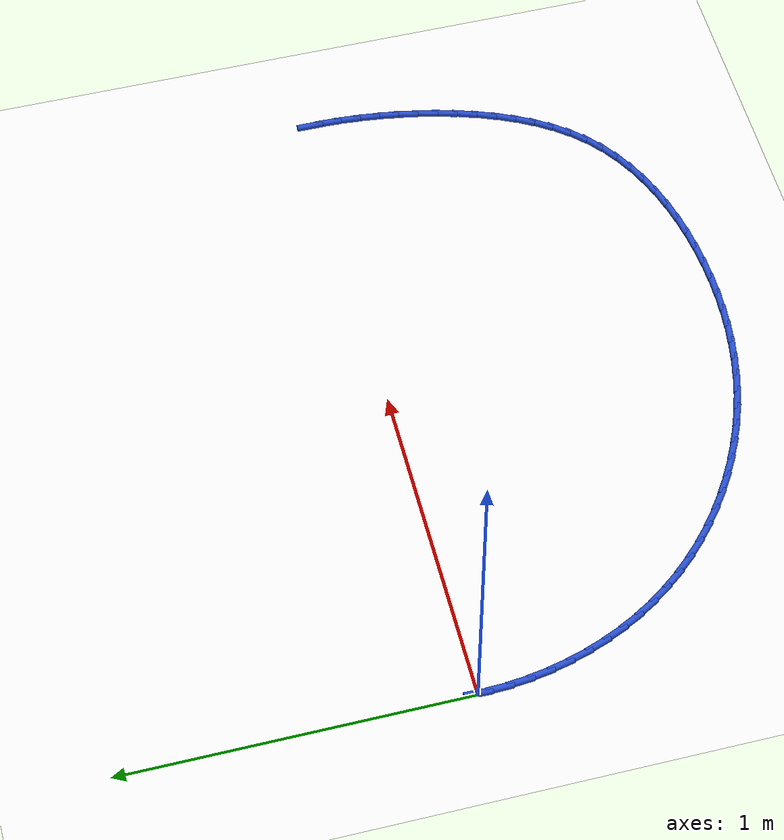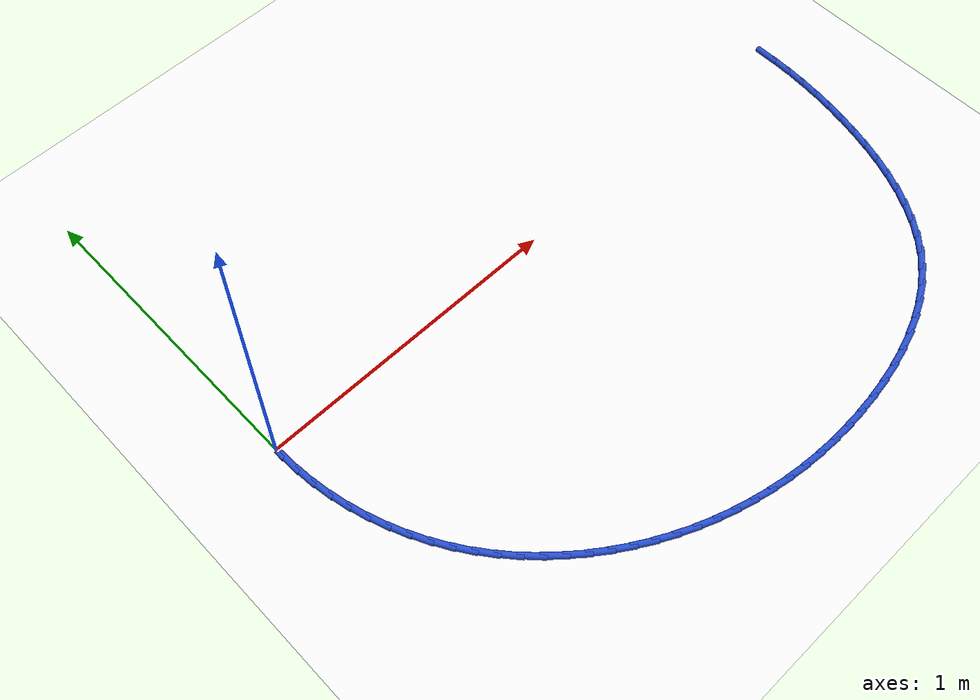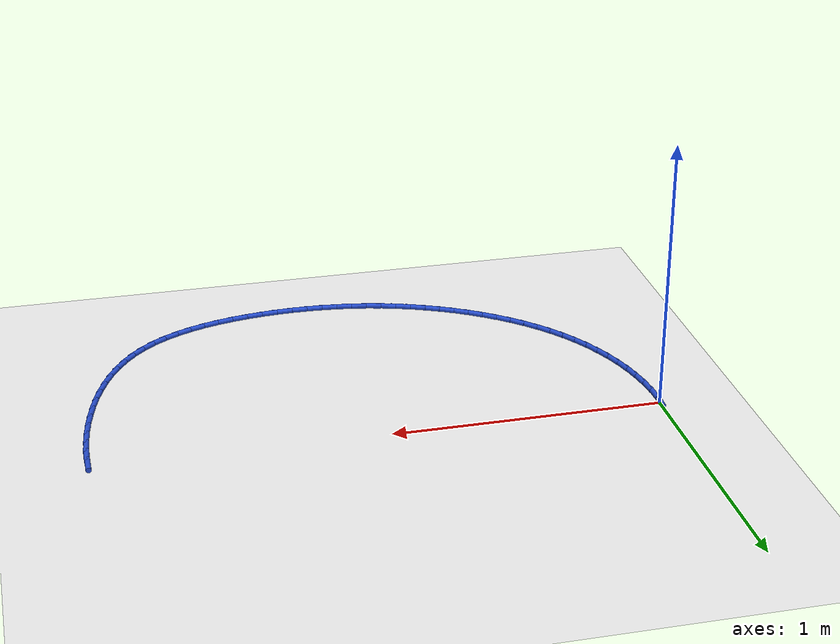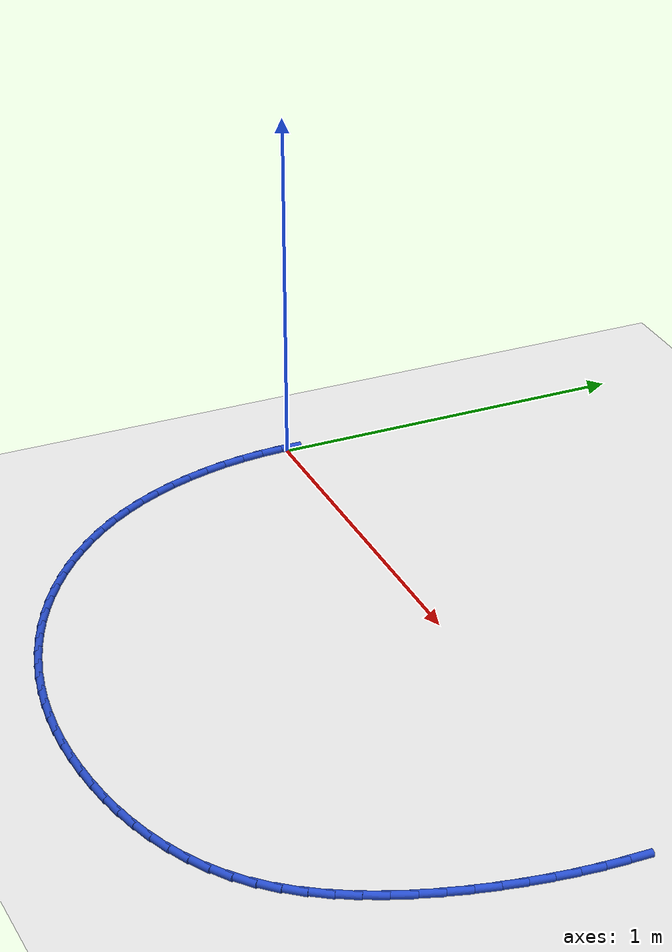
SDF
<sdf version="1.6">
 <world name="default">
  <model name="ground_plane">
   <static>1</static>
   <link name="link">
    <collision name="collision">
     <geometry><plane><normal>0 0 1</normal><size>100 100</size></plane></geometry>
     <surface><friction><ode><mu>100</mu><mu2>50</mu2></ode></friction></surface>
    </collision>
    <visual name="visual">
     <cast_shadows>0</cast_shadows>
     <geometry><plane><normal>0 0 1</normal><size>100 100</size></plane></geometry>
     <material>
      <script><uri>file://media/materials/scripts/gazebo.material</uri><name>Gazebo/WhiteGlow</name></script>
     </material>
    </visual>
   </link>
  </model>
  <model name="line">
   <link name="link_0">
    <pose>-6.938893903907228e-17 -4.163336342344337e-17 0.01 0 1.57 1.5328602613561564</pose>
    <collision name="collision">
     <geometry><cylinder><radius>0.01</radius><length>0.08</length></cylinder></geometry>
    </collision>
    <visual name="visual">
     <material>
      <script><name>Gazebo/Blue</name><uri>file://media/materials/scripts/gazebo.material</uri></script>
     </material>
     <geometry><cylinder><radius>0.01</radius><length>0.08</length></cylinder></geometry>
    </visual>
   </link>
   <link name="link_55">
    <pose>2.065390239784261 -0.01751924035546646 0.01 0 1.57 1.5667235144095604</pose>
    <collision name="collision">
     <geometry><cylinder><radius>0.01</radius><length>0.08</length></cylinder></geometry>
    </collision>
    <visual name="visual">
     <material>
      <script><name>Gazebo/Blue</name><uri>file://media/materials/scripts/gazebo.material</uri></script>
     </material>
     <geometry><cylinder><radius>0.01</radius><length>0.08</length></cylinder></geometry>
    </visual>
   </link>
   <link name="link_56">
    <pose>2.065147559204269 -0.07710441521364236 0.01 0 1.57 1.5249233463919325</pose>
    <collision name="collision">
     <geometry><cylinder><radius>0.01</radius><length>0.08</length></cylinder></geometry>
    </collision>
    <visual name="visual">
     <material>
      <script><name>Gazebo/Blue</name><uri>file://media/materials/scripts/gazebo.material</uri></script>
     </material>
     <geometry><cylinder><radius>0.01</radius><length>0.08</length></cylinder></geometry>
    </visual>
   </link>
   <link name="link_57">
    <pose>2.062403487495654 -0.13688136023302033 0.01 0 1.57 1.484120640709512</pose>
    <collision name="collision">
     <geometry><cylinder><radius>0.01</radius><length>0.08</length></cylinder></geometry>
    </collision>
    <visual name="visual">
     <material>
      <script><name>Gazebo/Blue</name><uri>file://media/materials/scripts/gazebo.material</uri></script>
     </material>
     <geometry><cylinder><radius>0.01</radius><length>0.08</length></cylinder></geometry>
    </visual>
   </link>
   <link name="link_58">
    <pose>2.0571951814565312 -0.19682039235672028 0.01 0 1.57 1.4443691964197785</pose>
    <collision name="collision">
     <geometry><cylinder><radius>0.01</radius><length>0.08</length></cylinder></geometry>
    </collision>
    <visual name="visual">
     <material>
      <script><name>Gazebo/Blue</name><uri>file://media/materials/scripts/gazebo.material</uri></script>
     </material>
     <geometry><cylinder><radius>0.01</radius><length>0.08</length></cylinder></geometry>
    </visual>
   </link>
   <link name="link_59">
    <pose>2.049559797885017 -0.25689182852786496 0.01 0 1.57 1.4057078302411725</pose>
    <collision name="collision">
     <geometry><cylinder><radius>0.01</radius><length>0.08</length></cylinder></geometry>
    </collision>
    <visual name="visual">
     <material>
      <script><name>Gazebo/Blue</name><uri>file://media/materials/scripts/gazebo.material</uri></script>
     </material>
     <geometry><cylinder><radius>0.01</radius><length>0.08</length></cylinder></geometry>
    </visual>
   </link>
   <link name="link_60">
    <pose>2.039534493579226 -0.3170659856895741 0.01 0 1.57 1.3679060801187792</pose>
    <collision name="collision">
     <geometry><cylinder><radius>0.01</radius><length>0.08</length></cylinder></geometry>
    </collision>
    <visual name="visual">
     <material>
      <script><name>Gazebo/Blue</name><uri>file://media/materials/scripts/gazebo.material</uri></script>
     </material>
     <geometry><cylinder><radius>0.01</radius><length>0.08</length></cylinder></geometry>
    </visual>
   </link>
   <link name="link_61">
    <pose>2.0271450735687075 -0.3772904203829154 0.01 0 1.57 1.3278888230209127</pose>
    <collision name="collision">
     <geometry><cylinder><radius>0.01</radius><length>0.08</length></cylinder></geometry>
    </collision>
    <visual name="visual">
     <material>
      <script><name>Gazebo/Blue</name><uri>file://media/materials/scripts/gazebo.material</uri></script>
     </material>
     <geometry><cylinder><radius>0.01</radius><length>0.08</length></cylinder></geometry>
    </visual>
   </link>
   <link name="link_62">
    <pose>2.0122868152004787 -0.43725097992573175 0.01 0 1.57 1.2832042748288657</pose>
    <collision name="collision">
     <geometry><cylinder><radius>0.01</radius><length>0.08</length></cylinder></geometry>
    </collision>
    <visual name="visual">
     <material>
      <script><name>Gazebo/Blue</name><uri>file://media/materials/scripts/gazebo.material</uri></script>
     </material>
     <geometry><cylinder><radius>0.01</radius><length>0.08</length></cylinder></geometry>
    </visual>
   </link>
   <link name="link_63">
    <pose>1.9947714615980734 -0.49646602473718526 0.01 0 1.57 1.2330884852553163</pose>
    <collision name="collision">
     <geometry><cylinder><radius>0.01</radius><length>0.08</length></cylinder></geometry>
    </collision>
    <visual name="visual">
     <material>
      <script><name>Gazebo/Blue</name><uri>file://media/materials/scripts/gazebo.material</uri></script>
     </material>
     <geometry><cylinder><radius>0.01</radius><length>0.08</length></cylinder></geometry>
    </visual>
   </link>
   <link name="link_64">
    <pose>1.9744093937584597 -0.5544511841599359 0.01 0 1.57 1.1767293585696</pose>
    <collision name="collision">
     <geometry><cylinder><radius>0.01</radius><length>0.08</length></cylinder></geometry>
    </collision>
    <visual name="visual">
     <material>
      <script><name>Gazebo/Blue</name><uri>file://media/materials/scripts/gazebo.material</uri></script>
     </material>
     <geometry><cylinder><radius>0.01</radius><length>0.08</length></cylinder></geometry>
    </visual>
   </link>
   <link name="link_65">
    <pose>1.9510109926786046 -0.6107220875366461 0.01 0 1.57 1.1132596212348667</pose>
    <collision name="collision">
     <geometry><cylinder><radius>0.01</radius><length>0.08</length></cylinder></geometry>
    </collision>
    <visual name="visual">
     <material>
      <script><name>Gazebo/Blue</name><uri>file://media/materials/scripts/gazebo.material</uri></script>
     </material>
     <geometry><cylinder><radius>0.01</radius><length>0.08</length></cylinder></geometry>
    </visual>
   </link>
   <link name="link_66">
    <pose>1.9243866393554725 -0.6647943642099777 0.01 0 1.57 1.04180992639475</pose>
    <collision name="collision">
     <geometry><cylinder><radius>0.01</radius><length>0.08</length></cylinder></geometry>
    </collision>
    <visual name="visual">
     <material>
      <script><name>Gazebo/Blue</name><uri>file://media/materials/scripts/gazebo.material</uri></script>
     </material>
     <geometry><cylinder><radius>0.01</radius><length>0.08</length></cylinder></geometry>
    </visual>
   </link>
   <link name="link_67">
    <pose>1.894346714786032 -0.7161836435225909 0.01 0 1.57 0.961606068669883</pose>
    <collision name="collision">
     <geometry><cylinder><radius>0.01</radius><length>0.08</length></cylinder></geometry>
    </collision>
    <visual name="visual">
     <material>
      <script><name>Gazebo/Blue</name><uri>file://media/materials/scripts/gazebo.material</uri></script>
     </material>
     <geometry><cylinder><radius>0.01</radius><length>0.08</length></cylinder></geometry>
    </visual>
   </link>
   <link name="link_68">
    <pose>1.8607015999672487 -0.7644055548171486 0.01 0 1.57 0.8721236228993514</pose>
    <collision name="collision">
     <geometry><cylinder><radius>0.01</radius><length>0.08</length></cylinder></geometry>
    </collision>
    <visual name="visual">
     <material>
      <script><name>Gazebo/Blue</name><uri>file://media/materials/scripts/gazebo.material</uri></script>
     </material>
     <geometry><cylinder><radius>0.01</radius><length>0.08</length></cylinder></geometry>
    </visual>
   </link>
   <link name="link_69">
    <pose>1.823261675896089 -0.8089757274363104 0.01 0 1.57 0.7733031125037239</pose>
    <collision name="collision">
     <geometry><cylinder><radius>0.01</radius><length>0.08</length></cylinder></geometry>
    </collision>
    <visual name="visual">
     <material>
      <script><name>Gazebo/Blue</name><uri>file://media/materials/scripts/gazebo.material</uri></script>
     </material>
     <geometry><cylinder><radius>0.01</radius><length>0.08</length></cylinder></geometry>
    </visual>
   </link>
   <link name="link_70">
    <pose>1.7818374013920415 -0.8494098719140968 0.01 0 1.57 0.6693312123889272</pose>
    <collision name="collision">
     <geometry><cylinder><radius>0.01</radius><length>0.08</length></cylinder></geometry>
    </collision>
    <visual name="visual">
     <material>
      <script><name>Gazebo/Blue</name><uri>file://media/materials/scripts/gazebo.material</uri></script>
     </material>
     <geometry><cylinder><radius>0.01</radius><length>0.08</length></cylinder></geometry>
    </visual>
   </link>
   <link name="link_71">
    <pose>1.7363820026910004 -0.8853726464160072 0.01 0 1.57 0.5720897312770478</pose>
    <collision name="collision">
     <geometry><cylinder><radius>0.01</radius><length>0.08</length></cylinder></geometry>
    </collision>
    <visual name="visual">
     <material>
      <script><name>Gazebo/Blue</name><uri>file://media/materials/scripts/gazebo.material</uri></script>
     </material>
     <geometry><cylinder><radius>0.01</radius><length>0.08</length></cylinder></geometry>
    </visual>
   </link>
   <link name="link_72">
    <pose>1.6872869780688275 -0.9169859533719695 0.01 0 1.57 0.484002492415613</pose>
    <collision name="collision">
     <geometry><cylinder><radius>0.01</radius><length>0.08</length></cylinder></geometry>
    </collision>
    <visual name="visual">
     <material>
      <script><name>Gazebo/Blue</name><uri>file://media/materials/scripts/gazebo.material</uri></script>
     </material>
     <geometry><cylinder><radius>0.01</radius><length>0.08</length></cylinder></geometry>
    </visual>
   </link>
   <link name="link_73">
    <pose>1.6350276463160438 -0.9444591442072189 0.01 0 1.57 0.4047864031667848</pose>
    <collision name="collision">
     <geometry><cylinder><radius>0.01</radius><length>0.08</length></cylinder></geometry>
    </collision>
    <visual name="visual">
     <material>
      <script><name>Gazebo/Blue</name><uri>file://media/materials/scripts/gazebo.material</uri></script>
     </material>
     <geometry><cylinder><radius>0.01</radius><length>0.08</length></cylinder></geometry>
    </visual>
   </link>
   <link name="link_74">
    <pose>1.5800793262231645 -0.9680015703469913 0.01 0 1.57 0.3337780192959363</pose>
    <collision name="collision">
     <geometry><cylinder><radius>0.01</radius><length>0.08</length></cylinder></geometry>
    </collision>
    <visual name="visual">
     <material>
      <script><name>Gazebo/Blue</name><uri>file://media/materials/scripts/gazebo.material</uri></script>
     </material>
     <geometry><cylinder><radius>0.01</radius><length>0.08</length></cylinder></geometry>
    </visual>
   </link>
   <link name="link_75">
    <pose>1.5229173365807096 -0.9878225832165215 0.01 0 1.57 0.27012304247640156</pose>
    <collision name="collision">
     <geometry><cylinder><radius>0.01</radius><length>0.08</length></cylinder></geometry>
    </collision>
    <visual name="visual">
     <material>
      <script><name>Gazebo/Blue</name><uri>file://media/materials/scripts/gazebo.material</uri></script>
     </material>
     <geometry><cylinder><radius>0.01</radius><length>0.08</length></cylinder></geometry>
    </visual>
   </link>
   <link name="link_76">
    <pose>1.4640169961791965 -1.004131534241046 0.01 0 1.57 0.2129057000117949</pose>
    <collision name="collision">
     <geometry><cylinder><radius>0.01</radius><length>0.08</length></cylinder></geometry>
    </collision>
    <visual name="visual">
     <material>
      <script><name>Gazebo/Blue</name><uri>file://media/materials/scripts/gazebo.material</uri></script>
     </material>
     <geometry><cylinder><radius>0.01</radius><length>0.08</length></cylinder></geometry>
    </visual>
   </link>
   <link name="link_77">
    <pose>1.4038536238091432 -1.0171377748457997 0.01 0 1.57 0.16122505594077166</pose>
    <collision name="collision">
     <geometry><cylinder><radius>0.01</radius><length>0.08</length></cylinder></geometry>
    </collision>
    <visual name="visual">
     <material>
      <script><name>Gazebo/Blue</name><uri>file://media/materials/scripts/gazebo.material</uri></script>
     </material>
     <geometry><cylinder><radius>0.01</radius><length>0.08</length></cylinder></geometry>
    </visual>
   </link>
   <link name="link_78">
    <pose>1.3429025382610684 -1.0270506564560185 0.01 0 1.57 0.11423239530566848</pose>
    <collision name="collision">
     <geometry><cylinder><radius>0.01</radius><length>0.08</length></cylinder></geometry>
    </collision>
    <visual name="visual">
     <material>
      <script><name>Gazebo/Blue</name><uri>file://media/materials/scripts/gazebo.material</uri></script>
     </material>
     <geometry><cylinder><radius>0.01</radius><length>0.08</length></cylinder></geometry>
    </visual>
   </link>
   <link name="link_79">
    <pose>1.2816390583254904 -1.034079530496938 0.01 0 1.57 0.07058225369698827</pose>
    <collision name="collision">
     <geometry><cylinder><radius>0.01</radius><length>0.08</length></cylinder></geometry>
    </collision>
    <visual name="visual">
     <material>
      <script><name>Gazebo/Blue</name><uri>file://media/materials/scripts/gazebo.material</uri></script>
     </material>
     <geometry><cylinder><radius>0.01</radius><length>0.08</length></cylinder></geometry>
    </visual>
   </link>
   <link name="link_80">
    <pose>1.2204823502569624 -1.038403291282684 0.01 0 1.57 0.027170258291969514</pose>
    <collision name="collision">
     <geometry><cylinder><radius>0.01</radius><length>0.08</length></cylinder></geometry>
    </collision>
    <visual name="visual">
     <material>
      <script><name>Gazebo/Blue</name><uri>file://media/materials/scripts/gazebo.material</uri></script>
     </material>
     <geometry><cylinder><radius>0.01</radius><length>0.08</length></cylinder></geometry>
    </visual>
   </link>
   <link name="link_81">
    <pose>1.1595886083114286 -1.040058197229594 0.01 0 1.57 -0.016833834704033022</pose>
    <collision name="collision">
     <geometry><cylinder><radius>0.01</radius><length>0.08</length></cylinder></geometry>
    </collision>
    <visual name="visual">
     <material>
      <script><name>Gazebo/Blue</name><uri>file://media/materials/scripts/gazebo.material</uri></script>
     </material>
     <geometry><cylinder><radius>0.01</radius><length>0.08</length></cylinder></geometry>
    </visual>
   </link>
   <link name="link_82">
    <pose>1.0990371097646063 -1.03903878701735 0.01 0 1.57 -0.06144249836632388</pose>
    <collision name="collision">
     <geometry><cylinder><radius>0.01</radius><length>0.08</length></cylinder></geometry>
    </collision>
    <visual name="visual">
     <material>
      <script><name>Gazebo/Blue</name><uri>file://media/materials/scripts/gazebo.material</uri></script>
     </material>
     <geometry><cylinder><radius>0.01</radius><length>0.08</length></cylinder></geometry>
    </visual>
   </link>
   <link name="link_83">
    <pose>1.0389071223531903 -1.0353395941516736 0.01 0 1.57 -0.10666269103659665</pose>
    <collision name="collision">
     <geometry><cylinder><radius>0.01</radius><length>0.08</length></cylinder></geometry>
    </collision>
    <visual name="visual">
     <material>
      <script><name>Gazebo/Blue</name><uri>file://media/materials/scripts/gazebo.material</uri></script>
     </material>
     <geometry><cylinder><radius>0.01</radius><length>0.08</length></cylinder></geometry>
    </visual>
   </link>
   <link name="link_84">
    <pose>0.9792779138138775 -1.0289551521382851 0.01 0 1.57 -0.15249499399347693</pose>
    <collision name="collision">
     <geometry><cylinder><radius>0.01</radius><length>0.08</length></cylinder></geometry>
    </collision>
    <visual name="visual">
     <material>
      <script><name>Gazebo/Blue</name><uri>file://media/materials/scripts/gazebo.material</uri></script>
     </material>
     <geometry><cylinder><radius>0.01</radius><length>0.08</length></cylinder></geometry>
    </visual>
   </link>
   <link name="link_85">
    <pose>0.9202287518833623 -1.0198799944829053 0.01 0 1.57 -0.19893266678238242</pose>
    <collision name="collision">
     <geometry><cylinder><radius>0.01</radius><length>0.08</length></cylinder></geometry>
    </collision>
    <visual name="visual">
     <material>
      <script><name>Gazebo/Blue</name><uri>file://media/materials/scripts/gazebo.material</uri></script>
     </material>
     <geometry><cylinder><radius>0.01</radius><length>0.08</length></cylinder></geometry>
    </visual>
   </link>
   <link name="link_86">
    <pose>0.861838904298342 -1.0081086546912557 0.01 0 1.57 -0.24596075070328402</pose>
    <collision name="collision">
     <geometry><cylinder><radius>0.01</radius><length>0.08</length></cylinder></geometry>
    </collision>
    <visual name="visual">
     <material>
      <script><name>Gazebo/Blue</name><uri>file://media/materials/scripts/gazebo.material</uri></script>
     </material>
     <geometry><cylinder><radius>0.01</radius><length>0.08</length></cylinder></geometry>
    </visual>
   </link>
   <link name="link_87">
    <pose>0.8041876387955108 -0.9936356662690566 0.01 0 1.57 -0.29355526211496213</pose>
    <collision name="collision">
     <geometry><cylinder><radius>0.01</radius><length>0.08</length></cylinder></geometry>
    </collision>
    <visual name="visual">
     <material>
      <script><name>Gazebo/Blue</name><uri>file://media/materials/scripts/gazebo.material</uri></script>
     </material>
     <geometry><cylinder><radius>0.01</radius><length>0.08</length></cylinder></geometry>
    </visual>
   </link>
   <link name="link_88">
    <pose>0.7473542231115653 -0.976455562722029 0.01 0 1.57 -0.3416825222215156</pose>
    <collision name="collision">
     <geometry><cylinder><radius>0.01</radius><length>0.08</length></cylinder></geometry>
    </collision>
    <visual name="visual">
     <material>
      <script><name>Gazebo/Blue</name><uri>file://media/materials/scripts/gazebo.material</uri></script>
     </material>
     <geometry><cylinder><radius>0.01</radius><length>0.08</length></cylinder></geometry>
    </visual>
   </link>
   <link name="link_89">
    <pose>0.6914179249832001 -0.9565628775558936 0.01 0 1.57 -0.39029867279538333</pose>
    <collision name="collision">
     <geometry><cylinder><radius>0.01</radius><length>0.08</length></cylinder></geometry>
    </collision>
    <visual name="visual">
     <material>
      <script><name>Gazebo/Blue</name><uri>file://media/materials/scripts/gazebo.material</uri></script>
     </material>
     <geometry><cylinder><radius>0.01</radius><length>0.08</length></cylinder></geometry>
    </visual>
   </link>
   <link name="link_90">
    <pose>0.6364580121471121 -0.9339521442763716 0.01 0 1.57 -0.4393494276015633</pose>
    <collision name="collision">
     <geometry><cylinder><radius>0.01</radius><length>0.08</length></cylinder></geometry>
    </collision>
    <visual name="visual">
     <material>
      <script><name>Gazebo/Blue</name><uri>file://media/materials/scripts/gazebo.material</uri></script>
     </material>
     <geometry><cylinder><radius>0.01</radius><length>0.08</length></cylinder></geometry>
    </visual>
   </link>
   <link name="link_91">
    <pose>0.5825537536012801 -0.9086178969370963 0.01 0 1.57 -0.48880693985619494</pose>
    <collision name="collision">
     <geometry><cylinder><radius>0.01</radius><length>0.08</length></cylinder></geometry>
    </collision>
    <visual name="visual">
     <material>
      <script><name>Gazebo/Blue</name><uri>file://media/materials/scripts/gazebo.material</uri></script>
     </material>
     <geometry><cylinder><radius>0.01</radius><length>0.08</length></cylinder></geometry>
    </visual>
   </link>
   <link name="link_92">
    <pose>0.5298100067158364 -0.8805657853975429 0.01 0 1.57 -0.5388787522145415</pose>
    <collision name="collision">
     <geometry><cylinder><radius>0.01</radius><length>0.08</length></cylinder></geometry>
    </collision>
    <visual name="visual">
     <material>
      <script><name>Gazebo/Blue</name><uri>file://media/materials/scripts/gazebo.material</uri></script>
     </material>
     <geometry><cylinder><radius>0.01</radius><length>0.08</length></cylinder></geometry>
    </visual>
   </link>
   <link name="link_93">
    <pose>0.47842295526611606 -0.8498411324820155 0.01 0 1.57 -0.5898601188890359</pose>
    <collision name="collision">
     <geometry><cylinder><radius>0.01</radius><length>0.08</length></cylinder></geometry>
    </collision>
    <visual name="visual">
     <material>
      <script><name>Gazebo/Blue</name><uri>file://media/materials/scripts/gazebo.material</uri></script>
     </material>
     <geometry><cylinder><radius>0.01</radius><length>0.08</length></cylinder></geometry>
    </visual>
   </link>
   <link name="link_94">
    <pose>0.42860914918799775 -0.816498108247656 0.01 0 1.57 -0.6420231107427514</pose>
    <collision name="collision">
     <geometry><cylinder><radius>0.01</radius><length>0.08</length></cylinder></geometry>
    </collision>
    <visual name="visual">
     <material>
      <script><name>Gazebo/Blue</name><uri>file://media/materials/scripts/gazebo.material</uri></script>
     </material>
     <geometry><cylinder><radius>0.01</radius><length>0.08</length></cylinder></geometry>
    </visual>
   </link>
   <link name="link_95">
    <pose>0.38058513841735836 -0.780590882751604 0.01 0 1.57 -0.6956251179475037</pose>
    <collision name="collision">
     <geometry><cylinder><radius>0.01</radius><length>0.08</length></cylinder></geometry>
    </collision>
    <visual name="visual">
     <material>
      <script><name>Gazebo/Blue</name><uri>file://media/materials/scripts/gazebo.material</uri></script>
     </material>
     <geometry><cylinder><radius>0.01</radius><length>0.08</length></cylinder></geometry>
    </visual>
   </link>
   <link name="link_96">
    <pose>0.33456747289007666 -0.742173626051002 0.01 0 1.57 -0.7509046412373295</pose>
    <collision name="collision">
     <geometry><cylinder><radius>0.01</radius><length>0.08</length></cylinder></geometry>
    </collision>
    <visual name="visual">
     <material>
      <script><name>Gazebo/Blue</name><uri>file://media/materials/scripts/gazebo.material</uri></script>
     </material>
     <geometry><cylinder><radius>0.01</radius><length>0.08</length></cylinder></geometry>
    </visual>
   </link>
   <link name="link_97">
    <pose>0.29077270254203014 -0.7013005082029902 0.01 0 1.57 -0.8080751292879222</pose>
    <collision name="collision">
     <geometry><cylinder><radius>0.01</radius><length>0.08</length></cylinder></geometry>
    </collision>
    <visual name="visual">
     <material>
      <script><name>Gazebo/Blue</name><uri>file://media/materials/scripts/gazebo.material</uri></script>
     </material>
     <geometry><cylinder><radius>0.01</radius><length>0.08</length></cylinder></geometry>
    </visual>
   </link>
   <link name="link_98">
    <pose>0.2494173773090959 -0.6580256992647086 0.01 0 1.57 -0.86731669903474</pose>
    <collision name="collision">
     <geometry><cylinder><radius>0.01</radius><length>0.08</length></cylinder></geometry>
    </collision>
    <visual name="visual">
     <material>
      <script><name>Gazebo/Blue</name><uri>file://media/materials/scripts/gazebo.material</uri></script>
     </material>
     <geometry><cylinder><radius>0.01</radius><length>0.08</length></cylinder></geometry>
    </visual>
   </link>
   <link name="link_99">
    <pose>0.21071804712715297 -0.6124033692932997 0.01 0 1.57 -0.928765757603315</pose>
    <collision name="collision">
     <geometry><cylinder><radius>0.01</radius><length>0.08</length></cylinder></geometry>
    </collision>
    <visual name="visual">
     <material>
      <script><name>Gazebo/Blue</name><uri>file://media/materials/scripts/gazebo.material</uri></script>
     </material>
     <geometry><cylinder><radius>0.01</radius><length>0.08</length></cylinder></geometry>
    </visual>
   </link>
   <link name="link_100">
    <pose>0.17489126193207813 -0.5644876883459032 0.01 0 1.57 -0.992409668095487</pose>
    <collision name="collision">
     <geometry><cylinder><radius>0.01</radius><length>0.08</length></cylinder></geometry>
    </collision>
    <visual name="visual">
     <material>
      <script><name>Gazebo/Blue</name><uri>file://media/materials/scripts/gazebo.material</uri></script>
     </material>
     <geometry><cylinder><radius>0.01</radius><length>0.08</length></cylinder></geometry>
    </visual>
   </link>
   <link name="link_101">
    <pose>0.14214996410735917 -0.514337509056692 0.01 0 1.57 -1.056357101405441</pose>
    <collision name="collision">
     <geometry><cylinder><radius>0.01</radius><length>0.08</length></cylinder></geometry>
    </collision>
    <visual name="visual">
     <material>
      <script><name>Gazebo/Blue</name><uri>file://media/materials/scripts/gazebo.material</uri></script>
     </material>
     <geometry><cylinder><radius>0.01</radius><length>0.08</length></cylinder></geometry>
    </visual>
   </link>
   <link name="link_102">
    <pose>0.11263109142582414 -0.46211033749727176 0.01 0 1.57 -1.118977457498076</pose>
    <collision name="collision">
     <geometry><cylinder><radius>0.01</radius><length>0.08</length></cylinder></geometry>
    </collision>
    <visual name="visual">
     <material>
      <script><name>Gazebo/Blue</name><uri>file://media/materials/scripts/gazebo.material</uri></script>
     </material>
     <geometry><cylinder><radius>0.01</radius><length>0.08</length></cylinder></geometry>
    </visual>
   </link>
   <link name="link_103">
    <pose>0.0863992582778853 -0.40805755496893437 0.01 0 1.57 -1.1805068449234866</pose>
    <collision name="collision">
     <geometry><cylinder><radius>0.01</radius><length>0.08</length></cylinder></geometry>
    </collision>
    <visual name="visual">
     <material>
      <script><name>Gazebo/Blue</name><uri>file://media/materials/scripts/gazebo.material</uri></script>
     </material>
     <geometry><cylinder><radius>0.01</radius><length>0.08</length></cylinder></geometry>
    </visual>
   </link>
   <link name="link_104">
    <pose>0.06351620831612541 -0.3524342689700016 0.01 0 1.57 -1.2412741146950081</pose>
    <collision name="collision">
     <geometry><cylinder><radius>0.01</radius><length>0.08</length></cylinder></geometry>
    </collision>
    <visual name="visual">
     <material>
      <script><name>Gazebo/Blue</name><uri>file://media/materials/scripts/gazebo.material</uri></script>
     </material>
     <geometry><cylinder><radius>0.01</radius><length>0.08</length></cylinder></geometry>
    </visual>
   </link>
   <link name="link_105">
    <pose>0.044043685193128325 -0.29549558699879735 0.01 0 1.57 -1.3016202356688644</pose>
    <collision name="collision">
     <geometry><cylinder><radius>0.01</radius><length>0.08</length></cylinder></geometry>
    </collision>
    <visual name="visual">
     <material>
      <script><name>Gazebo/Blue</name><uri>file://media/materials/scripts/gazebo.material</uri></script>
     </material>
     <geometry><cylinder><radius>0.01</radius><length>0.08</length></cylinder></geometry>
    </visual>
   </link>
   <link name="link_106">
    <pose>0.02804343256147701 -0.23749661655364349 0.01 0 1.57 -1.3618933118757817</pose>
    <collision name="collision">
     <geometry><cylinder><radius>0.01</radius><length>0.08</length></cylinder></geometry>
    </collision>
    <visual name="visual">
     <material>
      <script><name>Gazebo/Blue</name><uri>file://media/materials/scripts/gazebo.material</uri></script>
     </material>
     <geometry><cylinder><radius>0.01</radius><length>0.08</length></cylinder></geometry>
    </visual>
   </link>
   <link name="link_107">
    <pose>0.015577194073755272 -0.17869246513286446 0.01 0 1.57 -1.422444455309326</pose>
    <collision name="collision">
     <geometry><cylinder><radius>0.01</radius><length>0.08</length></cylinder></geometry>
    </collision>
    <visual name="visual">
     <material>
      <script><name>Gazebo/Blue</name><uri>file://media/materials/scripts/gazebo.material</uri></script>
     </material>
     <geometry><cylinder><radius>0.01</radius><length>0.08</length></cylinder></geometry>
    </visual>
   </link>
   <link name="link_108">
    <pose>0.006706713382546145 -0.11933824023478172 0.01 0 1.57 -1.483623845111425</pose>
    <collision name="collision">
     <geometry><cylinder><radius>0.01</radius><length>0.08</length></cylinder></geometry>
    </collision>
    <visual name="visual">
     <material>
      <script><name>Gazebo/Blue</name><uri>file://media/materials/scripts/gazebo.material</uri></script>
     </material>
     <geometry><cylinder><radius>0.01</radius><length>0.08</length></cylinder></geometry>
    </visual>
   </link>
   <link name="link_109">
    <pose>0.0014937341404332866 -0.05968904935771972 0.01 0 1.57 -1.545776286272194</pose>
    <collision name="collision">
     <geometry><cylinder><radius>0.01</radius><length>0.08</length></cylinder></geometry>
    </collision>
    <visual name="visual">
     <material>
      <script><name>Gazebo/Blue</name><uri>file://media/materials/scripts/gazebo.material</uri></script>
     </material>
     <geometry><cylinder><radius>0.01</radius><length>0.08</length></cylinder></geometry>
    </visual>
   </link>
  </model>
 </world>
</sdf>
